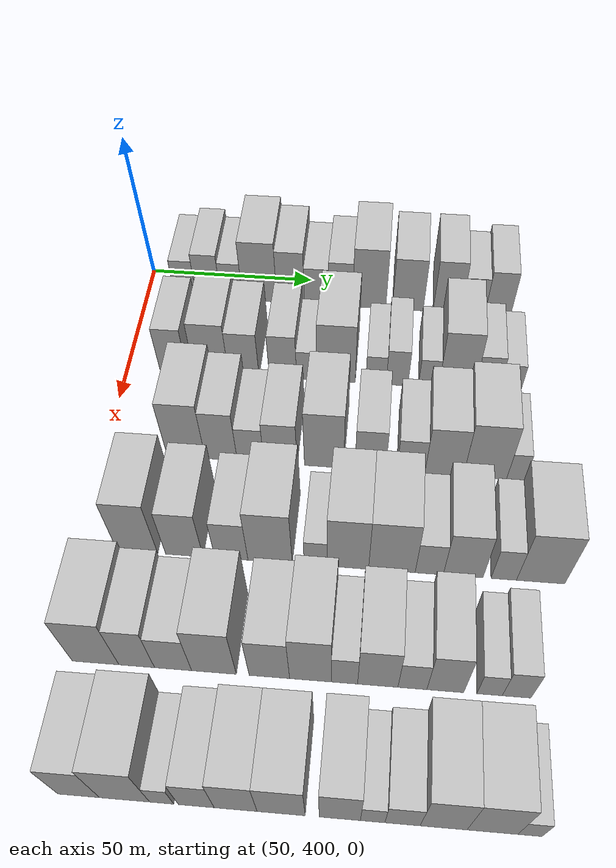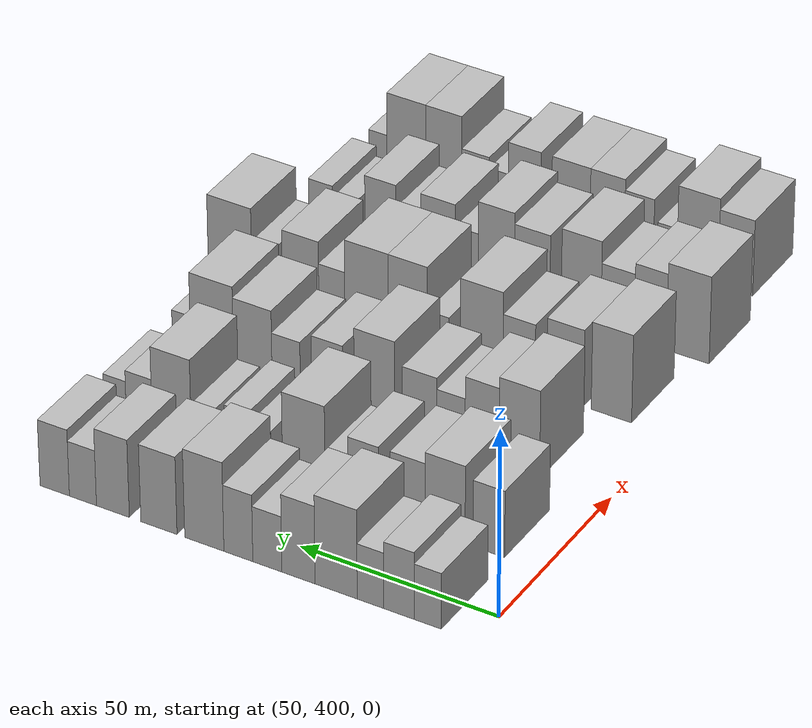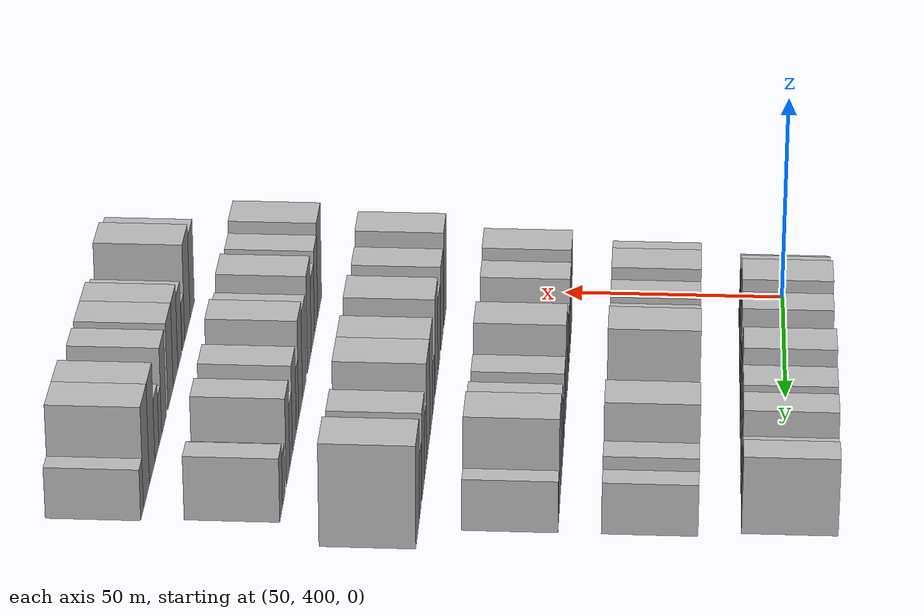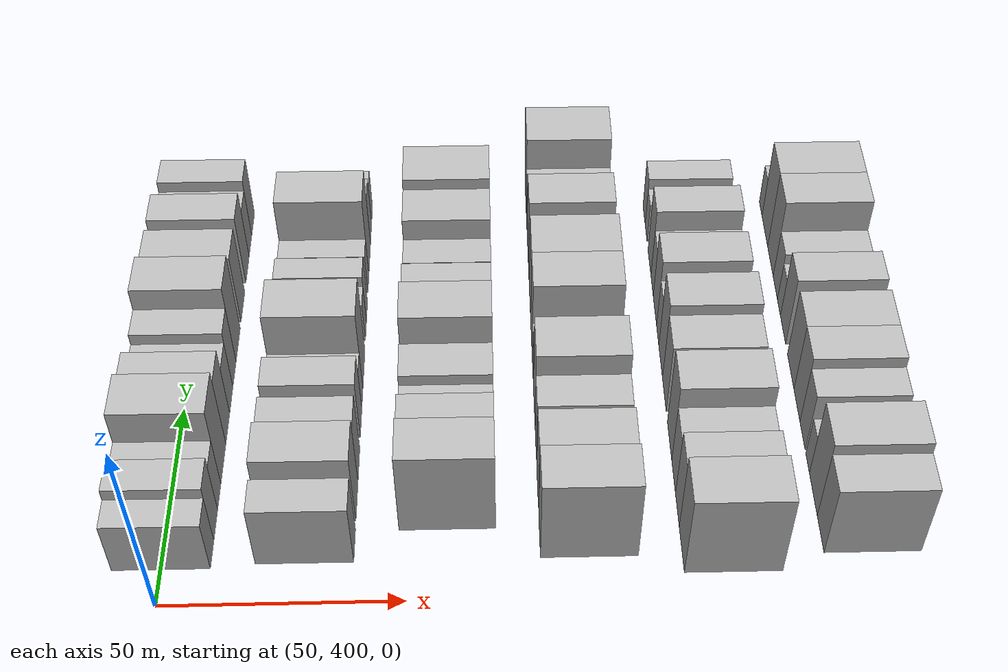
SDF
<sdf version="1.6">
 <world name="default">
  <model name="building_108">
   <static>1</static>
   <pose>50.0000 411.9269 0 0.000000 0.000000 0.000000</pose>
   <link name="link">
    <pose>0 0 7.50 0 0 0</pose>
    <collision name="collision"><geometry><box><size>20.0000 6.7696 15.0000</size></box></geometry></collision>
    <visual name="visual">
     <cast_shadows>0</cast_shadows>
     <geometry><box><size>20.0000 6.7696 15.0000</size></box></geometry>
     <material>
      <script>
       <uri>model://HANNAS_wall/materials/scripts</uri>
       <uri>model://HANNAS_wall/materials/textures</uri>
       <name>vrc/HANNAS_wall</name>
      </script>
     </material>
    </visual>
   </link>
  </model>
  <model name="building_109">
   <static>1</static>
   <pose>50.0000 419.1277 0 0.000000 0.000000 0.000000</pose>
   <link name="link">
    <pose>0 0 9.00 0 0 0</pose>
    <collision name="collision"><geometry><box><size>20.0000 7.6320 18.0000</size></box></geometry></collision>
    <visual name="visual">
     <cast_shadows>0</cast_shadows>
     <geometry><box><size>20.0000 7.6320 18.0000</size></box></geometry>
     <material>
      <script>
       <uri>model://HANNAS_wall/materials/scripts</uri>
       <uri>model://HANNAS_wall/materials/textures</uri>
       <name>vrc/HANNAS_wall</name>
      </script>
     </material>
    </visual>
   </link>
  </model>
  <model name="building_110">
   <static>1</static>
   <pose>50.0000 426.2913 0 0.000000 0.000000 0.000000</pose>
   <link name="link">
    <pose>0 0 7.50 0 0 0</pose>
    <collision name="collision"><geometry><box><size>20.0000 6.6952 15.0000</size></box></geometry></collision>
    <visual name="visual">
     <cast_shadows>0</cast_shadows>
     <geometry><box><size>20.0000 6.6952 15.0000</size></box></geometry>
     <material>
      <script>
       <uri>model://HANNAS_wall/materials/scripts</uri>
       <uri>model://HANNAS_wall/materials/textures</uri>
       <name>vrc/HANNAS_wall</name>
      </script>
     </material>
    </visual>
   </link>
  </model>
  <model name="building_111">
   <static>1</static>
   <pose>50.0000 434.9606 0 0.000000 0.000000 0.000000</pose>
   <link name="link">
    <pose>0 0 12.00 0 0 0</pose>
    <collision name="collision"><geometry><box><size>20.0000 10.6434 24.0000</size></box></geometry></collision>
    <visual name="visual">
     <cast_shadows>0</cast_shadows>
     <geometry><box><size>20.0000 10.6434 24.0000</size></box></geometry>
     <material>
      <script>
       <uri>model://HANNAS_wall/materials/scripts</uri>
       <uri>model://HANNAS_wall/materials/textures</uri>
       <name>vrc/HANNAS_wall</name>
      </script>
     </material>
    </visual>
   </link>
  </model>
  <model name="building_112">
   <static>1</static>
   <pose>50.0000 444.4989 0 0.000000 0.000000 0.000000</pose>
   <link name="link">
    <pose>0 0 10.50 0 0 0</pose>
    <collision name="collision"><geometry><box><size>20.0000 8.4332 21.0000</size></box></geometry></collision>
    <visual name="visual">
     <cast_shadows>0</cast_shadows>
     <geometry><box><size>20.0000 8.4332 21.0000</size></box></geometry>
     <material>
      <script>
       <uri>model://HANNAS_wall/materials/scripts</uri>
       <uri>model://HANNAS_wall/materials/textures</uri>
       <name>vrc/HANNAS_wall</name>
      </script>
     </material>
    </visual>
   </link>
  </model>
  <model name="building_113">
   <static>1</static>
   <pose>50.0000 452.4294 0 0.000000 0.000000 0.000000</pose>
   <link name="link">
    <pose>0 0 7.50 0 0 0</pose>
    <collision name="collision"><geometry><box><size>20.0000 7.4277 15.0000</size></box></geometry></collision>
    <visual name="visual">
     <cast_shadows>0</cast_shadows>
     <geometry><box><size>20.0000 7.4277 15.0000</size></box></geometry>
     <material>
      <script>
       <uri>model://HANNAS_wall/materials/scripts</uri>
       <uri>model://HANNAS_wall/materials/textures</uri>
       <name>vrc/HANNAS_wall</name>
      </script>
     </material>
    </visual>
   </link>
  </model>
  <model name="building_114">
   <static>1</static>
   <pose>50.0000 459.8561 0 0.000000 0.000000 0.000000</pose>
   <link name="link">
    <pose>0 0 9.00 0 0 0</pose>
    <collision name="collision"><geometry><box><size>20.0000 7.4256 18.0000</size></box></geometry></collision>
    <visual name="visual">
     <cast_shadows>0</cast_shadows>
     <geometry><box><size>20.0000 7.4256 18.0000</size></box></geometry>
     <material>
      <script>
       <uri>model://HANNAS_wall/materials/scripts</uri>
       <uri>model://HANNAS_wall/materials/textures</uri>
       <name>vrc/HANNAS_wall</name>
      </script>
     </material>
    </visual>
   </link>
  </model>
  <model name="building_115">
   <static>1</static>
   <pose>50.0000 468.6189 0 0.000000 0.000000 0.000000</pose>
   <link name="link">
    <pose>0 0 12.00 0 0 0</pose>
    <collision name="collision"><geometry><box><size>20.0000 10.1001 24.0000</size></box></geometry></collision>
    <visual name="visual">
     <cast_shadows>0</cast_shadows>
     <geometry><box><size>20.0000 10.1001 24.0000</size></box></geometry>
     <material>
      <script>
       <uri>model://HANNAS_wall/materials/scripts</uri>
       <uri>model://HANNAS_wall/materials/textures</uri>
       <name>vrc/HANNAS_wall</name>
      </script>
     </material>
    </visual>
   </link>
  </model>
  <model name="building_116">
   <static>1</static>
   <pose>50.0000 480.3730 0 0.000000 0.000000 0.000000</pose>
   <link name="link">
    <pose>0 0 10.50 0 0 0</pose>
    <collision name="collision"><geometry><box><size>20.0000 9.4082 21.0000</size></box></geometry></collision>
    <visual name="visual">
     <cast_shadows>0</cast_shadows>
     <geometry><box><size>20.0000 9.4082 21.0000</size></box></geometry>
     <material>
      <script>
       <uri>model://HANNAS_wall/materials/scripts</uri>
       <uri>model://HANNAS_wall/materials/textures</uri>
       <name>vrc/HANNAS_wall</name>
      </script>
     </material>
    </visual>
   </link>
  </model>
  <model name="building_117">
   <static>1</static>
   <pose>50.0000 492.3762 0 0.000000 0.000000 0.000000</pose>
   <link name="link">
    <pose>0 0 10.50 0 0 0</pose>
    <collision name="collision"><geometry><box><size>20.0000 8.5983 21.0000</size></box></geometry></collision>
    <visual name="visual">
     <cast_shadows>0</cast_shadows>
     <geometry><box><size>20.0000 8.5983 21.0000</size></box></geometry>
     <material>
      <script>
       <uri>model://HANNAS_wall/materials/scripts</uri>
       <uri>model://HANNAS_wall/materials/textures</uri>
       <name>vrc/HANNAS_wall</name>
      </script>
     </material>
    </visual>
   </link>
  </model>
  <model name="building_118">
   <static>1</static>
   <pose>50.0000 500.2348 0 0.000000 0.000000 0.000000</pose>
   <link name="link">
    <pose>0 0 7.50 0 0 0</pose>
    <collision name="collision"><geometry><box><size>20.0000 7.1189 15.0000</size></box></geometry></collision>
    <visual name="visual">
     <cast_shadows>0</cast_shadows>
     <geometry><box><size>20.0000 7.1189 15.0000</size></box></geometry>
     <material>
      <script>
       <uri>model://HANNAS_wall/materials/scripts</uri>
       <uri>model://HANNAS_wall/materials/textures</uri>
       <name>vrc/HANNAS_wall</name>
      </script>
     </material>
    </visual>
   </link>
  </model>
  <model name="building_119">
   <static>1</static>
   <pose>50.0000 507.6701 0 0.000000 0.000000 0.000000</pose>
   <link name="link">
    <pose>0 0 9.00 0 0 0</pose>
    <collision name="collision"><geometry><box><size>20.0000 7.7516 18.0000</size></box></geometry></collision>
    <visual name="visual">
     <cast_shadows>0</cast_shadows>
     <geometry><box><size>20.0000 7.7516 18.0000</size></box></geometry>
     <material>
      <script>
       <uri>model://HANNAS_wall/materials/scripts</uri>
       <uri>model://HANNAS_wall/materials/textures</uri>
       <name>vrc/HANNAS_wall</name>
      </script>
     </material>
    </visual>
   </link>
  </model>
  <model name="building_225">
   <static>1</static>
   <pose>79.0000 413.4334 0 0.000000 0.000000 0.000000</pose>
   <link name="link">
    <pose>0 0 9.00 0 0 0</pose>
    <collision name="collision"><geometry><box><size>20.0000 7.9701 18.0000</size></box></geometry></collision>
    <visual name="visual">
     <cast_shadows>0</cast_shadows>
     <geometry><box><size>20.0000 7.9701 18.0000</size></box></geometry>
     <material>
      <script>
       <uri>model://HANNAS_wall/materials/scripts</uri>
       <uri>model://HANNAS_wall/materials/textures</uri>
       <name>vrc/HANNAS_wall</name>
      </script>
     </material>
    </visual>
   </link>
  </model>
  <model name="building_226">
   <static>1</static>
   <pose>79.0000 424.4886 0 0.000000 0.000000 0.000000</pose>
   <link name="link">
    <pose>0 0 10.50 0 0 0</pose>
    <collision name="collision"><geometry><box><size>20.0000 10.1403 21.0000</size></box></geometry></collision>
    <visual name="visual">
     <cast_shadows>0</cast_shadows>
     <geometry><box><size>20.0000 10.1403 21.0000</size></box></geometry>
     <material>
      <script>
       <uri>model://HANNAS_wall/materials/scripts</uri>
       <uri>model://HANNAS_wall/materials/textures</uri>
       <name>vrc/HANNAS_wall</name>
      </script>
     </material>
    </visual>
   </link>
  </model>
  <model name="building_227">
   <static>1</static>
   <pose>79.0000 433.9899 0 0.000000 0.000000 0.000000</pose>
   <link name="link">
    <pose>0 0 9.00 0 0 0</pose>
    <collision name="collision"><geometry><box><size>20.0000 8.8624 18.0000</size></box></geometry></collision>
    <visual name="visual">
     <cast_shadows>0</cast_shadows>
     <geometry><box><size>20.0000 8.8624 18.0000</size></box></geometry>
     <material>
      <script>
       <uri>model://HANNAS_wall/materials/scripts</uri>
       <uri>model://HANNAS_wall/materials/textures</uri>
       <name>vrc/HANNAS_wall</name>
      </script>
     </material>
    </visual>
   </link>
  </model>
  <model name="building_228">
   <static>1</static>
   <pose>79.0000 445.3698 0 0.000000 0.000000 0.000000</pose>
   <link name="link">
    <pose>0 0 9.00 0 0 0</pose>
    <collision name="collision"><geometry><box><size>20.0000 7.8973 18.0000</size></box></geometry></collision>
    <visual name="visual">
     <cast_shadows>0</cast_shadows>
     <geometry><box><size>20.0000 7.8973 18.0000</size></box></geometry>
     <material>
      <script>
       <uri>model://HANNAS_wall/materials/scripts</uri>
       <uri>model://HANNAS_wall/materials/textures</uri>
       <name>vrc/HANNAS_wall</name>
      </script>
     </material>
    </visual>
   </link>
  </model>
  <model name="building_229">
   <static>1</static>
   <pose>79.0000 452.2491 0 0.000000 0.000000 0.000000</pose>
   <link name="link">
    <pose>0 0 6.00 0 0 0</pose>
    <collision name="collision"><geometry><box><size>20.0000 5.8613 12.0000</size></box></geometry></collision>
    <visual name="visual">
     <cast_shadows>0</cast_shadows>
     <geometry><box><size>20.0000 5.8613 12.0000</size></box></geometry>
     <material>
      <script>
       <uri>model://HANNAS_wall/materials/scripts</uri>
       <uri>model://HANNAS_wall/materials/textures</uri>
       <name>vrc/HANNAS_wall</name>
      </script>
     </material>
    </visual>
   </link>
  </model>
  <model name="building_230">
   <static>1</static>
   <pose>79.0000 460.6904 0 0.000000 0.000000 0.000000</pose>
   <link name="link">
    <pose>0 0 12.00 0 0 0</pose>
    <collision name="collision"><geometry><box><size>20.0000 11.0213 24.0000</size></box></geometry></collision>
    <visual name="visual">
     <cast_shadows>0</cast_shadows>
     <geometry><box><size>20.0000 11.0213 24.0000</size></box></geometry>
     <material>
      <script>
       <uri>model://HANNAS_wall/materials/scripts</uri>
       <uri>model://HANNAS_wall/materials/textures</uri>
       <name>vrc/HANNAS_wall</name>
      </script>
     </material>
    </visual>
   </link>
  </model>
  <model name="building_231">
   <static>1</static>
   <pose>79.0000 472.1210 0 0.000000 0.000000 0.000000</pose>
   <link name="link">
    <pose>0 0 6.00 0 0 0</pose>
    <collision name="collision"><geometry><box><size>20.0000 5.8399 12.0000</size></box></geometry></collision>
    <visual name="visual">
     <cast_shadows>0</cast_shadows>
     <geometry><box><size>20.0000 5.8399 12.0000</size></box></geometry>
     <material>
      <script>
       <uri>model://HANNAS_wall/materials/scripts</uri>
       <uri>model://HANNAS_wall/materials/textures</uri>
       <name>vrc/HANNAS_wall</name>
      </script>
     </material>
    </visual>
   </link>
  </model>
  <model name="building_232">
   <static>1</static>
   <pose>79.0000 478.1657 0 0.000000 0.000000 0.000000</pose>
   <link name="link">
    <pose>0 0 7.50 0 0 0</pose>
    <collision name="collision"><geometry><box><size>20.0000 6.2494 15.0000</size></box></geometry></collision>
    <visual name="visual">
     <cast_shadows>0</cast_shadows>
     <geometry><box><size>20.0000 6.2494 15.0000</size></box></geometry>
     <material>
      <script>
       <uri>model://HANNAS_wall/materials/scripts</uri>
       <uri>model://HANNAS_wall/materials/textures</uri>
       <name>vrc/HANNAS_wall</name>
      </script>
     </material>
    </visual>
   </link>
  </model>
  <model name="building_233">
   <static>1</static>
   <pose>79.0000 487.1738 0 0.000000 0.000000 0.000000</pose>
   <link name="link">
    <pose>0 0 6.00 0 0 0</pose>
    <collision name="collision"><geometry><box><size>20.0000 5.7669 12.0000</size></box></geometry></collision>
    <visual name="visual">
     <cast_shadows>0</cast_shadows>
     <geometry><box><size>20.0000 5.7669 12.0000</size></box></geometry>
     <material>
      <script>
       <uri>model://HANNAS_wall/materials/scripts</uri>
       <uri>model://HANNAS_wall/materials/textures</uri>
       <name>vrc/HANNAS_wall</name>
      </script>
     </material>
    </visual>
   </link>
  </model>
  <model name="building_234">
   <static>1</static>
   <pose>79.0000 495.2326 0 0.000000 0.000000 0.000000</pose>
   <link name="link">
    <pose>0 0 12.00 0 0 0</pose>
    <collision name="collision"><geometry><box><size>20.0000 10.3508 24.0000</size></box></geometry></collision>
    <visual name="visual">
     <cast_shadows>0</cast_shadows>
     <geometry><box><size>20.0000 10.3508 24.0000</size></box></geometry>
     <material>
      <script>
       <uri>model://HANNAS_wall/materials/scripts</uri>
       <uri>model://HANNAS_wall/materials/textures</uri>
       <name>vrc/HANNAS_wall</name>
      </script>
     </material>
    </visual>
   </link>
  </model>
  <model name="building_235">
   <static>1</static>
   <pose>79.0000 503.8541 0 0.000000 0.000000 0.000000</pose>
   <link name="link">
    <pose>0 0 7.50 0 0 0</pose>
    <collision name="collision"><geometry><box><size>20.0000 6.8923 15.0000</size></box></geometry></collision>
    <visual name="visual">
     <cast_shadows>0</cast_shadows>
     <geometry><box><size>20.0000 6.8923 15.0000</size></box></geometry>
     <material>
      <script>
       <uri>model://HANNAS_wall/materials/scripts</uri>
       <uri>model://HANNAS_wall/materials/textures</uri>
       <name>vrc/HANNAS_wall</name>
      </script>
     </material>
    </visual>
   </link>
  </model>
  <model name="building_236">
   <static>1</static>
   <pose>79.0000 510.2798 0 0.000000 0.000000 0.000000</pose>
   <link name="link">
    <pose>0 0 6.00 0 0 0</pose>
    <collision name="collision"><geometry><box><size>20.0000 5.9590 12.0000</size></box></geometry></collision>
    <visual name="visual">
     <cast_shadows>0</cast_shadows>
     <geometry><box><size>20.0000 5.9590 12.0000</size></box></geometry>
     <material>
      <script>
       <uri>model://HANNAS_wall/materials/scripts</uri>
       <uri>model://HANNAS_wall/materials/textures</uri>
       <name>vrc/HANNAS_wall</name>
      </script>
     </material>
    </visual>
   </link>
  </model>
  <model name="building_338">
   <static>1</static>
   <pose>108.0000 422.2607 0 0.000000 0.000000 0.000000</pose>
   <link name="link">
    <pose>0 0 12.00 0 0 0</pose>
    <collision name="collision"><geometry><box><size>20.0000 10.4419 24.0000</size></box></geometry></collision>
    <visual name="visual">
     <cast_shadows>0</cast_shadows>
     <geometry><box><size>20.0000 10.4419 24.0000</size></box></geometry>
     <material>
      <script>
       <uri>model://HANNAS_wall/materials/scripts</uri>
       <uri>model://HANNAS_wall/materials/textures</uri>
       <name>vrc/HANNAS_wall</name>
      </script>
     </material>
    </visual>
   </link>
  </model>
  <model name="building_339">
   <static>1</static>
   <pose>108.0000 431.8320 0 0.000000 0.000000 0.000000</pose>
   <link name="link">
    <pose>0 0 10.50 0 0 0</pose>
    <collision name="collision"><geometry><box><size>20.0000 8.7008 21.0000</size></box></geometry></collision>
    <visual name="visual">
     <cast_shadows>0</cast_shadows>
     <geometry><box><size>20.0000 8.7008 21.0000</size></box></geometry>
     <material>
      <script>
       <uri>model://HANNAS_wall/materials/scripts</uri>
       <uri>model://HANNAS_wall/materials/textures</uri>
       <name>vrc/HANNAS_wall</name>
      </script>
     </material>
    </visual>
   </link>
  </model>
  <model name="building_340">
   <static>1</static>
   <pose>108.0000 439.8077 0 0.000000 0.000000 0.000000</pose>
   <link name="link">
    <pose>0 0 7.50 0 0 0</pose>
    <collision name="collision"><geometry><box><size>20.0000 7.2505 15.0000</size></box></geometry></collision>
    <visual name="visual">
     <cast_shadows>0</cast_shadows>
     <geometry><box><size>20.0000 7.2505 15.0000</size></box></geometry>
     <material>
      <script>
       <uri>model://HANNAS_wall/materials/scripts</uri>
       <uri>model://HANNAS_wall/materials/textures</uri>
       <name>vrc/HANNAS_wall</name>
      </script>
     </material>
    </visual>
   </link>
  </model>
  <model name="building_341">
   <static>1</static>
   <pose>108.0000 447.9152 0 0.000000 0.000000 0.000000</pose>
   <link name="link">
    <pose>0 0 9.00 0 0 0</pose>
    <collision name="collision"><geometry><box><size>20.0000 8.9646 18.0000</size></box></geometry></collision>
    <visual name="visual">
     <cast_shadows>0</cast_shadows>
     <geometry><box><size>20.0000 8.9646 18.0000</size></box></geometry>
     <material>
      <script>
       <uri>model://HANNAS_wall/materials/scripts</uri>
       <uri>model://HANNAS_wall/materials/textures</uri>
       <name>vrc/HANNAS_wall</name>
      </script>
     </material>
    </visual>
   </link>
  </model>
  <model name="building_342">
   <static>1</static>
   <pose>108.0000 459.6870 0 0.000000 0.000000 0.000000</pose>
   <link name="link">
    <pose>0 0 12.00 0 0 0</pose>
    <collision name="collision"><geometry><box><size>20.0000 10.5789 24.0000</size></box></geometry></collision>
    <visual name="visual">
     <cast_shadows>0</cast_shadows>
     <geometry><box><size>20.0000 10.5789 24.0000</size></box></geometry>
     <material>
      <script>
       <uri>model://HANNAS_wall/materials/scripts</uri>
       <uri>model://HANNAS_wall/materials/textures</uri>
       <name>vrc/HANNAS_wall</name>
      </script>
     </material>
    </visual>
   </link>
  </model>
  <model name="building_343">
   <static>1</static>
   <pose>108.0000 472.0746 0 0.000000 0.000000 0.000000</pose>
   <link name="link">
    <pose>0 0 9.00 0 0 0</pose>
    <collision name="collision"><geometry><box><size>20.0000 8.1962 18.0000</size></box></geometry></collision>
    <visual name="visual">
     <cast_shadows>0</cast_shadows>
     <geometry><box><size>20.0000 8.1962 18.0000</size></box></geometry>
     <material>
      <script>
       <uri>model://HANNAS_wall/materials/scripts</uri>
       <uri>model://HANNAS_wall/materials/textures</uri>
       <name>vrc/HANNAS_wall</name>
      </script>
     </material>
    </visual>
   </link>
  </model>
  <model name="building_344">
   <static>1</static>
   <pose>108.0000 482.9196 0 0.000000 0.000000 0.000000</pose>
   <link name="link">
    <pose>0 0 7.50 0 0 0</pose>
    <collision name="collision"><geometry><box><size>20.0000 7.4939 15.0000</size></box></geometry></collision>
    <visual name="visual">
     <cast_shadows>0</cast_shadows>
     <geometry><box><size>20.0000 7.4939 15.0000</size></box></geometry>
     <material>
      <script>
       <uri>model://HANNAS_wall/materials/scripts</uri>
       <uri>model://HANNAS_wall/materials/textures</uri>
       <name>vrc/HANNAS_wall</name>
      </script>
     </material>
    </visual>
   </link>
  </model>
  <model name="building_345">
   <static>1</static>
   <pose>108.0000 491.7899 0 0.000000 0.000000 0.000000</pose>
   <link name="link">
    <pose>0 0 10.50 0 0 0</pose>
    <collision name="collision"><geometry><box><size>20.0000 10.2468 21.0000</size></box></geometry></collision>
    <visual name="visual">
     <cast_shadows>0</cast_shadows>
     <geometry><box><size>20.0000 10.2468 21.0000</size></box></geometry>
     <material>
      <script>
       <uri>model://HANNAS_wall/materials/scripts</uri>
       <uri>model://HANNAS_wall/materials/textures</uri>
       <name>vrc/HANNAS_wall</name>
      </script>
     </material>
    </visual>
   </link>
  </model>
  <model name="building_346">
   <static>1</static>
   <pose>108.0000 502.6582 0 0.000000 0.000000 0.000000</pose>
   <link name="link">
    <pose>0 0 12.00 0 0 0</pose>
    <collision name="collision"><geometry><box><size>20.0000 11.4896 24.0000</size></box></geometry></collision>
    <visual name="visual">
     <cast_shadows>0</cast_shadows>
     <geometry><box><size>20.0000 11.4896 24.0000</size></box></geometry>
     <material>
      <script>
       <uri>model://HANNAS_wall/materials/scripts</uri>
       <uri>model://HANNAS_wall/materials/textures</uri>
       <name>vrc/HANNAS_wall</name>
      </script>
     </material>
    </visual>
   </link>
  </model>
  <model name="building_347">
   <static>1</static>
   <pose>108.0000 510.8573 0 0.000000 0.000000 0.000000</pose>
   <link name="link">
    <pose>0 0 6.00 0 0 0</pose>
    <collision name="collision"><geometry><box><size>20.0000 4.9086 12.0000</size></box></geometry></collision>
    <visual name="visual">
     <cast_shadows>0</cast_shadows>
     <geometry><box><size>20.0000 4.9086 12.0000</size></box></geometry>
     <material>
      <script>
       <uri>model://HANNAS_wall/materials/scripts</uri>
       <uri>model://HANNAS_wall/materials/textures</uri>
       <name>vrc/HANNAS_wall</name>
      </script>
     </material>
    </visual>
   </link>
  </model>
  <model name="building_455">
   <static>1</static>
   <pose>137.0000 414.8703 0 0.000000 0.000000 0.000000</pose>
   <link name="link">
    <pose>0 0 12.00 0 0 0</pose>
    <collision name="collision"><geometry><box><size>20.0000 10.4049 24.0000</size></box></geometry></collision>
    <visual name="visual">
     <cast_shadows>0</cast_shadows>
     <geometry><box><size>20.0000 10.4049 24.0000</size></box></geometry>
     <material>
      <script>
       <uri>model://HANNAS_wall/materials/scripts</uri>
       <uri>model://HANNAS_wall/materials/textures</uri>
       <name>vrc/HANNAS_wall</name>
      </script>
     </material>
    </visual>
   </link>
  </model>
  <model name="building_456">
   <static>1</static>
   <pose>137.0000 426.8453 0 0.000000 0.000000 0.000000</pose>
   <link name="link">
    <pose>0 0 10.50 0 0 0</pose>
    <collision name="collision"><geometry><box><size>20.0000 9.5451 21.0000</size></box></geometry></collision>
    <visual name="visual">
     <cast_shadows>0</cast_shadows>
     <geometry><box><size>20.0000 9.5451 21.0000</size></box></geometry>
     <material>
      <script>
       <uri>model://HANNAS_wall/materials/scripts</uri>
       <uri>model://HANNAS_wall/materials/textures</uri>
       <name>vrc/HANNAS_wall</name>
      </script>
     </material>
    </visual>
   </link>
  </model>
  <model name="building_457">
   <static>1</static>
   <pose>137.0000 438.8003 0 0.000000 0.000000 0.000000</pose>
   <link name="link">
    <pose>0 0 9.00 0 0 0</pose>
    <collision name="collision"><geometry><box><size>20.0000 8.3649 18.0000</size></box></geometry></collision>
    <visual name="visual">
     <cast_shadows>0</cast_shadows>
     <geometry><box><size>20.0000 8.3649 18.0000</size></box></geometry>
     <material>
      <script>
       <uri>model://HANNAS_wall/materials/scripts</uri>
       <uri>model://HANNAS_wall/materials/textures</uri>
       <name>vrc/HANNAS_wall</name>
      </script>
     </material>
    </visual>
   </link>
  </model>
  <model name="building_458">
   <static>1</static>
   <pose>137.0000 448.5600 0 0.000000 0.000000 0.000000</pose>
   <link name="link">
    <pose>0 0 12.00 0 0 0</pose>
    <collision name="collision"><geometry><box><size>20.0000 11.1544 24.0000</size></box></geometry></collision>
    <visual name="visual">
     <cast_shadows>0</cast_shadows>
     <geometry><box><size>20.0000 11.1544 24.0000</size></box></geometry>
     <material>
      <script>
       <uri>model://HANNAS_wall/materials/scripts</uri>
       <uri>model://HANNAS_wall/materials/textures</uri>
       <name>vrc/HANNAS_wall</name>
      </script>
     </material>
    </visual>
   </link>
  </model>
  <model name="building_459">
   <static>1</static>
   <pose>137.0000 460.0001 0 0.000000 0.000000 0.000000</pose>
   <link name="link">
    <pose>0 0 6.00 0 0 0</pose>
    <collision name="collision"><geometry><box><size>20.0000 5.7259 12.0000</size></box></geometry></collision>
    <visual name="visual">
     <cast_shadows>0</cast_shadows>
     <geometry><box><size>20.0000 5.7259 12.0000</size></box></geometry>
     <material>
      <script>
       <uri>model://HANNAS_wall/materials/scripts</uri>
       <uri>model://HANNAS_wall/materials/textures</uri>
       <name>vrc/HANNAS_wall</name>
      </script>
     </material>
    </visual>
   </link>
  </model>
  <model name="building_460">
   <static>1</static>
   <pose>137.0000 468.0421 0 0.000000 0.000000 0.000000</pose>
   <link name="link">
    <pose>0 0 12.00 0 0 0</pose>
    <collision name="collision"><geometry><box><size>20.0000 10.3581 24.0000</size></box></geometry></collision>
    <visual name="visual">
     <cast_shadows>0</cast_shadows>
     <geometry><box><size>20.0000 10.3581 24.0000</size></box></geometry>
     <material>
      <script>
       <uri>model://HANNAS_wall/materials/scripts</uri>
       <uri>model://HANNAS_wall/materials/textures</uri>
       <name>vrc/HANNAS_wall</name>
      </script>
     </material>
    </visual>
   </link>
  </model>
  <model name="building_461">
   <static>1</static>
   <pose>137.0000 479.0149 0 0.000000 0.000000 0.000000</pose>
   <link name="link">
    <pose>0 0 12.00 0 0 0</pose>
    <collision name="collision"><geometry><box><size>20.0000 11.5875 24.0000</size></box></geometry></collision>
    <visual name="visual">
     <cast_shadows>0</cast_shadows>
     <geometry><box><size>20.0000 11.5875 24.0000</size></box></geometry>
     <material>
      <script>
       <uri>model://HANNAS_wall/materials/scripts</uri>
       <uri>model://HANNAS_wall/materials/textures</uri>
       <name>vrc/HANNAS_wall</name>
      </script>
     </material>
    </visual>
   </link>
  </model>
  <model name="building_462">
   <static>1</static>
   <pose>137.0000 488.2964 0 0.000000 0.000000 0.000000</pose>
   <link name="link">
    <pose>0 0 7.50 0 0 0</pose>
    <collision name="collision"><geometry><box><size>20.0000 6.9755 15.0000</size></box></geometry></collision>
    <visual name="visual">
     <cast_shadows>0</cast_shadows>
     <geometry><box><size>20.0000 6.9755 15.0000</size></box></geometry>
     <material>
      <script>
       <uri>model://HANNAS_wall/materials/scripts</uri>
       <uri>model://HANNAS_wall/materials/textures</uri>
       <name>vrc/HANNAS_wall</name>
      </script>
     </material>
    </visual>
   </link>
  </model>
  <model name="building_463">
   <static>1</static>
   <pose>137.0000 496.6977 0 0.000000 0.000000 0.000000</pose>
   <link name="link">
    <pose>0 0 10.50 0 0 0</pose>
    <collision name="collision"><geometry><box><size>20.0000 9.8271 21.0000</size></box></geometry></collision>
    <visual name="visual">
     <cast_shadows>0</cast_shadows>
     <geometry><box><size>20.0000 9.8271 21.0000</size></box></geometry>
     <material>
      <script>
       <uri>model://HANNAS_wall/materials/scripts</uri>
       <uri>model://HANNAS_wall/materials/textures</uri>
       <name>vrc/HANNAS_wall</name>
      </script>
     </material>
    </visual>
   </link>
  </model>
  <model name="building_464">
   <static>1</static>
   <pose>137.0000 506.7354 0 0.000000 0.000000 0.000000</pose>
   <link name="link">
    <pose>0 0 7.50 0 0 0</pose>
    <collision name="collision"><geometry><box><size>20.0000 6.2483 15.0000</size></box></geometry></collision>
    <visual name="visual">
     <cast_shadows>0</cast_shadows>
     <geometry><box><size>20.0000 6.2483 15.0000</size></box></geometry>
     <material>
      <script>
       <uri>model://HANNAS_wall/materials/scripts</uri>
       <uri>model://HANNAS_wall/materials/textures</uri>
       <name>vrc/HANNAS_wall</name>
      </script>
     </material>
    </visual>
   </link>
  </model>
  <model name="building_465">
   <static>1</static>
   <pose>137.0000 515.7873 0 0.000000 0.000000 0.000000</pose>
   <link name="link">
    <pose>0 0 12.00 0 0 0</pose>
    <collision name="collision"><geometry><box><size>20.0000 11.8556 24.0000</size></box></geometry></collision>
    <visual name="visual">
     <cast_shadows>0</cast_shadows>
     <geometry><box><size>20.0000 11.8556 24.0000</size></box></geometry>
     <material>
      <script>
       <uri>model://HANNAS_wall/materials/scripts</uri>
       <uri>model://HANNAS_wall/materials/textures</uri>
       <name>vrc/HANNAS_wall</name>
      </script>
     </material>
    </visual>
   </link>
  </model>
  <model name="building_565">
   <static>1</static>
   <pose>166.0000 410.9712 0 0.000000 0.000000 0.000000</pose>
   <link name="link">
    <pose>0 0 12.00 0 0 0</pose>
    <collision name="collision"><geometry><box><size>20.0000 11.0668 24.0000</size></box></geometry></collision>
    <visual name="visual">
     <cast_shadows>0</cast_shadows>
     <geometry><box><size>20.0000 11.0668 24.0000</size></box></geometry>
     <material>
      <script>
       <uri>model://HANNAS_wall/materials/scripts</uri>
       <uri>model://HANNAS_wall/materials/textures</uri>
       <name>vrc/HANNAS_wall</name>
      </script>
     </material>
    </visual>
   </link>
  </model>
  <model name="building_566">
   <static>1</static>
   <pose>166.0000 420.7194 0 0.000000 0.000000 0.000000</pose>
   <link name="link">
    <pose>0 0 10.50 0 0 0</pose>
    <collision name="collision"><geometry><box><size>20.0000 8.4296 21.0000</size></box></geometry></collision>
    <visual name="visual">
     <cast_shadows>0</cast_shadows>
     <geometry><box><size>20.0000 8.4296 21.0000</size></box></geometry>
     <material>
      <script>
       <uri>model://HANNAS_wall/materials/scripts</uri>
       <uri>model://HANNAS_wall/materials/textures</uri>
       <name>vrc/HANNAS_wall</name>
      </script>
     </material>
    </visual>
   </link>
  </model>
  <model name="building_567">
   <static>1</static>
   <pose>166.0000 429.2960 0 0.000000 0.000000 0.000000</pose>
   <link name="link">
    <pose>0 0 9.00 0 0 0</pose>
    <collision name="collision"><geometry><box><size>20.0000 8.7237 18.0000</size></box></geometry></collision>
    <visual name="visual">
     <cast_shadows>0</cast_shadows>
     <geometry><box><size>20.0000 8.7237 18.0000</size></box></geometry>
     <material>
      <script>
       <uri>model://HANNAS_wall/materials/scripts</uri>
       <uri>model://HANNAS_wall/materials/textures</uri>
       <name>vrc/HANNAS_wall</name>
      </script>
     </material>
    </visual>
   </link>
  </model>
  <model name="building_568">
   <static>1</static>
   <pose>166.0000 438.8942 0 0.000000 0.000000 0.000000</pose>
   <link name="link">
    <pose>0 0 12.00 0 0 0</pose>
    <collision name="collision"><geometry><box><size>20.0000 10.4727 24.0000</size></box></geometry></collision>
    <visual name="visual">
     <cast_shadows>0</cast_shadows>
     <geometry><box><size>20.0000 10.4727 24.0000</size></box></geometry>
     <material>
      <script>
       <uri>model://HANNAS_wall/materials/scripts</uri>
       <uri>model://HANNAS_wall/materials/textures</uri>
       <name>vrc/HANNAS_wall</name>
      </script>
     </material>
    </visual>
   </link>
  </model>
  <model name="building_569">
   <static>1</static>
   <pose>166.0000 451.8500 0 0.000000 0.000000 0.000000</pose>
   <link name="link">
    <pose>0 0 10.50 0 0 0</pose>
    <collision name="collision"><geometry><box><size>20.0000 9.4388 21.0000</size></box></geometry></collision>
    <visual name="visual">
     <cast_shadows>0</cast_shadows>
     <geometry><box><size>20.0000 9.4388 21.0000</size></box></geometry>
     <material>
      <script>
       <uri>model://HANNAS_wall/materials/scripts</uri>
       <uri>model://HANNAS_wall/materials/textures</uri>
       <name>vrc/HANNAS_wall</name>
      </script>
     </material>
    </visual>
   </link>
  </model>
  <model name="building_570">
   <static>1</static>
   <pose>166.0000 461.3833 0 0.000000 0.000000 0.000000</pose>
   <link name="link">
    <pose>0 0 12.00 0 0 0</pose>
    <collision name="collision"><geometry><box><size>20.0000 9.6278 24.0000</size></box></geometry></collision>
    <visual name="visual">
     <cast_shadows>0</cast_shadows>
     <geometry><box><size>20.0000 9.6278 24.0000</size></box></geometry>
     <material>
      <script>
       <uri>model://HANNAS_wall/materials/scripts</uri>
       <uri>model://HANNAS_wall/materials/textures</uri>
       <name>vrc/HANNAS_wall</name>
      </script>
     </material>
    </visual>
   </link>
  </model>
  <model name="building_571">
   <static>1</static>
   <pose>166.0000 469.2447 0 0.000000 0.000000 0.000000</pose>
   <link name="link">
    <pose>0 0 7.50 0 0 0</pose>
    <collision name="collision"><geometry><box><size>20.0000 6.0950 15.0000</size></box></geometry></collision>
    <visual name="visual">
     <cast_shadows>0</cast_shadows>
     <geometry><box><size>20.0000 6.0950 15.0000</size></box></geometry>
     <material>
      <script>
       <uri>model://HANNAS_wall/materials/scripts</uri>
       <uri>model://HANNAS_wall/materials/textures</uri>
       <name>vrc/HANNAS_wall</name>
      </script>
     </material>
    </visual>
   </link>
  </model>
  <model name="building_572">
   <static>1</static>
   <pose>166.0000 476.9438 0 0.000000 0.000000 0.000000</pose>
   <link name="link">
    <pose>0 0 10.50 0 0 0</pose>
    <collision name="collision"><geometry><box><size>20.0000 9.3031 21.0000</size></box></geometry></collision>
    <visual name="visual">
     <cast_shadows>0</cast_shadows>
     <geometry><box><size>20.0000 9.3031 21.0000</size></box></geometry>
     <material>
      <script>
       <uri>model://HANNAS_wall/materials/scripts</uri>
       <uri>model://HANNAS_wall/materials/textures</uri>
       <name>vrc/HANNAS_wall</name>
      </script>
     </material>
    </visual>
   </link>
  </model>
  <model name="building_573">
   <static>1</static>
   <pose>166.0000 484.9133 0 0.000000 0.000000 0.000000</pose>
   <link name="link">
    <pose>0 0 7.50 0 0 0</pose>
    <collision name="collision"><geometry><box><size>20.0000 6.6361 15.0000</size></box></geometry></collision>
    <visual name="visual">
     <cast_shadows>0</cast_shadows>
     <geometry><box><size>20.0000 6.6361 15.0000</size></box></geometry>
     <material>
      <script>
       <uri>model://HANNAS_wall/materials/scripts</uri>
       <uri>model://HANNAS_wall/materials/textures</uri>
       <name>vrc/HANNAS_wall</name>
      </script>
     </material>
    </visual>
   </link>
  </model>
  <model name="building_574">
   <static>1</static>
   <pose>166.0000 492.4586 0 0.000000 0.000000 0.000000</pose>
   <link name="link">
    <pose>0 0 10.50 0 0 0</pose>
    <collision name="collision"><geometry><box><size>20.0000 8.4545 21.0000</size></box></geometry></collision>
    <visual name="visual">
     <cast_shadows>0</cast_shadows>
     <geometry><box><size>20.0000 8.4545 21.0000</size></box></geometry>
     <material>
      <script>
       <uri>model://HANNAS_wall/materials/scripts</uri>
       <uri>model://HANNAS_wall/materials/textures</uri>
       <name>vrc/HANNAS_wall</name>
      </script>
     </material>
    </visual>
   </link>
  </model>
  <model name="building_575">
   <static>1</static>
   <pose>166.0000 502.5708 0 0.000000 0.000000 0.000000</pose>
   <link name="link">
    <pose>0 0 6.00 0 0 0</pose>
    <collision name="collision"><geometry><box><size>20.0000 5.7700 12.0000</size></box></geometry></collision>
    <visual name="visual">
     <cast_shadows>0</cast_shadows>
     <geometry><box><size>20.0000 5.7700 12.0000</size></box></geometry>
     <material>
      <script>
       <uri>model://HANNAS_wall/materials/scripts</uri>
       <uri>model://HANNAS_wall/materials/textures</uri>
       <name>vrc/HANNAS_wall</name>
      </script>
     </material>
    </visual>
   </link>
  </model>
  <model name="building_576">
   <static>1</static>
   <pose>166.0000 508.7413 0 0.000000 0.000000 0.000000</pose>
   <link name="link">
    <pose>0 0 7.50 0 0 0</pose>
    <collision name="collision"><geometry><box><size>20.0000 6.5709 15.0000</size></box></geometry></collision>
    <visual name="visual">
     <cast_shadows>0</cast_shadows>
     <geometry><box><size>20.0000 6.5709 15.0000</size></box></geometry>
     <material>
      <script>
       <uri>model://HANNAS_wall/materials/scripts</uri>
       <uri>model://HANNAS_wall/materials/textures</uri>
       <name>vrc/HANNAS_wall</name>
      </script>
     </material>
    </visual>
   </link>
  </model>
  <model name="building_682">
   <static>1</static>
   <pose>195.0000 414.0994 0 0.000000 0.000000 0.000000</pose>
   <link name="link">
    <pose>0 0 10.50 0 0 0</pose>
    <collision name="collision"><geometry><box><size>20.0000 9.0813 21.0000</size></box></geometry></collision>
    <visual name="visual">
     <cast_shadows>0</cast_shadows>
     <geometry><box><size>20.0000 9.0813 21.0000</size></box></geometry>
     <material>
      <script>
       <uri>model://HANNAS_wall/materials/scripts</uri>
       <uri>model://HANNAS_wall/materials/textures</uri>
       <name>vrc/HANNAS_wall</name>
      </script>
     </material>
    </visual>
   </link>
  </model>
  <model name="building_683">
   <static>1</static>
   <pose>195.0000 424.0979 0 0.000000 0.000000 0.000000</pose>
   <link name="link">
    <pose>0 0 12.00 0 0 0</pose>
    <collision name="collision"><geometry><box><size>20.0000 10.9157 24.0000</size></box></geometry></collision>
    <visual name="visual">
     <cast_shadows>0</cast_shadows>
     <geometry><box><size>20.0000 10.9157 24.0000</size></box></geometry>
     <material>
      <script>
       <uri>model://HANNAS_wall/materials/scripts</uri>
       <uri>model://HANNAS_wall/materials/textures</uri>
       <name>vrc/HANNAS_wall</name>
      </script>
     </material>
    </visual>
   </link>
  </model>
  <model name="building_684">
   <static>1</static>
   <pose>195.0000 432.1615 0 0.000000 0.000000 0.000000</pose>
   <link name="link">
    <pose>0 0 6.00 0 0 0</pose>
    <collision name="collision"><geometry><box><size>20.0000 5.2114 12.0000</size></box></geometry></collision>
    <visual name="visual">
     <cast_shadows>0</cast_shadows>
     <geometry><box><size>20.0000 5.2114 12.0000</size></box></geometry>
     <material>
      <script>
       <uri>model://HANNAS_wall/materials/scripts</uri>
       <uri>model://HANNAS_wall/materials/textures</uri>
       <name>vrc/HANNAS_wall</name>
      </script>
     </material>
    </visual>
   </link>
  </model>
  <model name="building_685">
   <static>1</static>
   <pose>195.0000 439.6311 0 0.000000 0.000000 0.000000</pose>
   <link name="link">
    <pose>0 0 9.00 0 0 0</pose>
    <collision name="collision"><geometry><box><size>20.0000 7.7277 18.0000</size></box></geometry></collision>
    <visual name="visual">
     <cast_shadows>0</cast_shadows>
     <geometry><box><size>20.0000 7.7277 18.0000</size></box></geometry>
     <material>
      <script>
       <uri>model://HANNAS_wall/materials/scripts</uri>
       <uri>model://HANNAS_wall/materials/textures</uri>
       <name>vrc/HANNAS_wall</name>
      </script>
     </material>
    </visual>
   </link>
  </model>
  <model name="building_686">
   <static>1</static>
   <pose>195.0000 448.0996 0 0.000000 0.000000 0.000000</pose>
   <link name="link">
    <pose>0 0 10.50 0 0 0</pose>
    <collision name="collision"><geometry><box><size>20.0000 9.2092 21.0000</size></box></geometry></collision>
    <visual name="visual">
     <cast_shadows>0</cast_shadows>
     <geometry><box><size>20.0000 9.2092 21.0000</size></box></geometry>
     <material>
      <script>
       <uri>model://HANNAS_wall/materials/scripts</uri>
       <uri>model://HANNAS_wall/materials/textures</uri>
       <name>vrc/HANNAS_wall</name>
      </script>
     </material>
    </visual>
   </link>
  </model>
  <model name="building_687">
   <static>1</static>
   <pose>195.0000 457.8405 0 0.000000 0.000000 0.000000</pose>
   <link name="link">
    <pose>0 0 10.50 0 0 0</pose>
    <collision name="collision"><geometry><box><size>20.0000 10.2727 21.0000</size></box></geometry></collision>
    <visual name="visual">
     <cast_shadows>0</cast_shadows>
     <geometry><box><size>20.0000 10.2727 21.0000</size></box></geometry>
     <material>
      <script>
       <uri>model://HANNAS_wall/materials/scripts</uri>
       <uri>model://HANNAS_wall/materials/textures</uri>
       <name>vrc/HANNAS_wall</name>
      </script>
     </material>
    </visual>
   </link>
  </model>
  <model name="building_688">
   <static>1</static>
   <pose>195.0000 470.3342 0 0.000000 0.000000 0.000000</pose>
   <link name="link">
    <pose>0 0 10.50 0 0 0</pose>
    <collision name="collision"><geometry><box><size>20.0000 8.7147 21.0000</size></box></geometry></collision>
    <visual name="visual">
     <cast_shadows>0</cast_shadows>
     <geometry><box><size>20.0000 8.7147 21.0000</size></box></geometry>
     <material>
      <script>
       <uri>model://HANNAS_wall/materials/scripts</uri>
       <uri>model://HANNAS_wall/materials/textures</uri>
       <name>vrc/HANNAS_wall</name>
      </script>
     </material>
    </visual>
   </link>
  </model>
  <model name="building_689">
   <static>1</static>
   <pose>195.0000 477.2893 0 0.000000 0.000000 0.000000</pose>
   <link name="link">
    <pose>0 0 6.00 0 0 0</pose>
    <collision name="collision"><geometry><box><size>20.0000 5.1957 12.0000</size></box></geometry></collision>
    <visual name="visual">
     <cast_shadows>0</cast_shadows>
     <geometry><box><size>20.0000 5.1957 12.0000</size></box></geometry>
     <material>
      <script>
       <uri>model://HANNAS_wall/materials/scripts</uri>
       <uri>model://HANNAS_wall/materials/textures</uri>
       <name>vrc/HANNAS_wall</name>
      </script>
     </material>
    </visual>
   </link>
  </model>
  <model name="building_690">
   <static>1</static>
   <pose>195.0000 483.6158 0 0.000000 0.000000 0.000000</pose>
   <link name="link">
    <pose>0 0 7.50 0 0 0</pose>
    <collision name="collision"><geometry><box><size>20.0000 7.4573 15.0000</size></box></geometry></collision>
    <visual name="visual">
     <cast_shadows>0</cast_shadows>
     <geometry><box><size>20.0000 7.4573 15.0000</size></box></geometry>
     <material>
      <script>
       <uri>model://HANNAS_wall/materials/scripts</uri>
       <uri>model://HANNAS_wall/materials/textures</uri>
       <name>vrc/HANNAS_wall</name>
      </script>
     </material>
    </visual>
   </link>
  </model>
  <model name="building_691">
   <static>1</static>
   <pose>195.0000 492.2743 0 0.000000 0.000000 0.000000</pose>
   <link name="link">
    <pose>0 0 12.00 0 0 0</pose>
    <collision name="collision"><geometry><box><size>20.0000 9.8599 24.0000</size></box></geometry></collision>
    <visual name="visual">
     <cast_shadows>0</cast_shadows>
     <geometry><box><size>20.0000 9.8599 24.0000</size></box></geometry>
     <material>
      <script>
       <uri>model://HANNAS_wall/materials/scripts</uri>
       <uri>model://HANNAS_wall/materials/textures</uri>
       <name>vrc/HANNAS_wall</name>
      </script>
     </material>
    </visual>
   </link>
  </model>
  <model name="building_692">
   <static>1</static>
   <pose>195.0000 502.5219 0 0.000000 0.000000 0.000000</pose>
   <link name="link">
    <pose>0 0 12.00 0 0 0</pose>
    <collision name="collision"><geometry><box><size>20.0000 10.6352 24.0000</size></box></geometry></collision>
    <visual name="visual">
     <cast_shadows>0</cast_shadows>
     <geometry><box><size>20.0000 10.6352 24.0000</size></box></geometry>
     <material>
      <script>
       <uri>model://HANNAS_wall/materials/scripts</uri>
       <uri>model://HANNAS_wall/materials/textures</uri>
       <name>vrc/HANNAS_wall</name>
      </script>
     </material>
    </visual>
   </link>
  </model>
  <model name="building_693">
   <static>1</static>
   <pose>195.0000 510.3703 0 0.000000 0.000000 0.000000</pose>
   <link name="link">
    <pose>0 0 6.00 0 0 0</pose>
    <collision name="collision"><geometry><box><size>20.0000 5.0617 12.0000</size></box></geometry></collision>
    <visual name="visual">
     <cast_shadows>0</cast_shadows>
     <geometry><box><size>20.0000 5.0617 12.0000</size></box></geometry>
     <material>
      <script>
       <uri>model://HANNAS_wall/materials/scripts</uri>
       <uri>model://HANNAS_wall/materials/textures</uri>
       <name>vrc/HANNAS_wall</name>
      </script>
     </material>
    </visual>
   </link>
  </model>
 </world>
</sdf>
